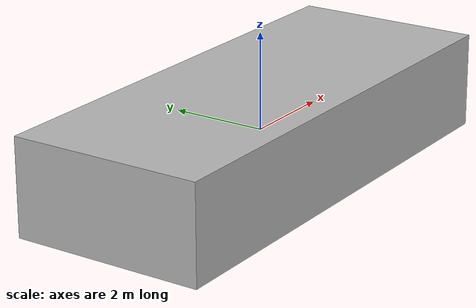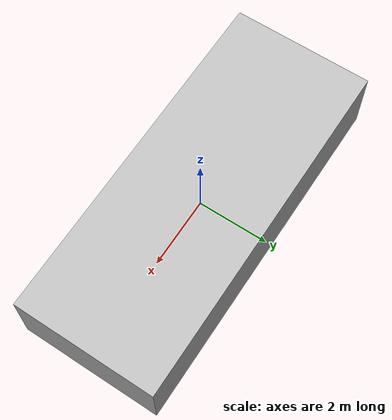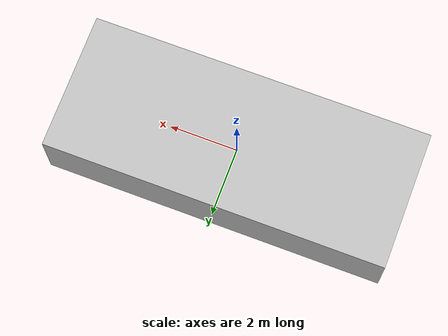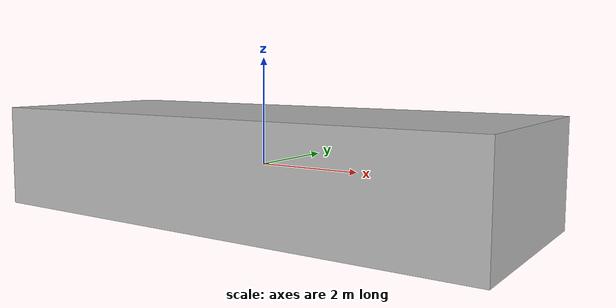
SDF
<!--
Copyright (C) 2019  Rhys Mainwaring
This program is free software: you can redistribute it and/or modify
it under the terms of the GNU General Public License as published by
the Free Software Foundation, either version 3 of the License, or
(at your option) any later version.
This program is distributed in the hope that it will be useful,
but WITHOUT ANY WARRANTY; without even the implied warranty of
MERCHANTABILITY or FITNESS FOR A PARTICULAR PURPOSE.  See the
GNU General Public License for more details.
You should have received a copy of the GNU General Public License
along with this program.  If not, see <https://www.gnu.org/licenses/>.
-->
<?xml version="1.0" ?>
<sdf version="1.6">
  <model name="box">
    <static>false</static>
    <plugin name="hydrodynamics" filename="libHydrodynamicsPlugin.so">
      <!-- Wave Model -->
      <wave_model>ocean</wave_model>

      <!-- Hydrodynamics -->
      <damping_on>true</damping_on>
      <viscous_drag_on>true</viscous_drag_on>
      <pressure_drag_on>true</pressure_drag_on>
      <link_name>base_link</link_name>

      <!-- Markers -->
      <markers>
        <update_rate>30</update_rate>
        <water_patch>false</water_patch>
        <waterline>false</waterline>
        <underwater_surface>false</underwater_surface>
      </markers>
    </plugin>

    <link name="base_link">
      <visual name="base_visual">
        <geometry>
          <box>
            <size>10 4 2</size>
          </box>
        </geometry>
      </visual>

      <collision name="base_collision">
        <geometry>
          <box>
            <size>10 4 2</size>
          </box>
        </geometry>
      </collision>

      <!-- Mass and inertial assume volume is 0.25 densitity of water -->
      <inertial>
        <pose>0 0 0 0 0 0</pose>
        <mass>20000</mass>
        <inertia>
          <ixx>33333</ixx>
          <ixy>0.0</ixy>
          <ixz>0.0</ixz>
          <iyy>173333</iyy>
          <iyz>0.0</iyz>
          <izz>193333</izz>
        </inertia>
      </inertial>

    </link>
  </model>
</sdf>
